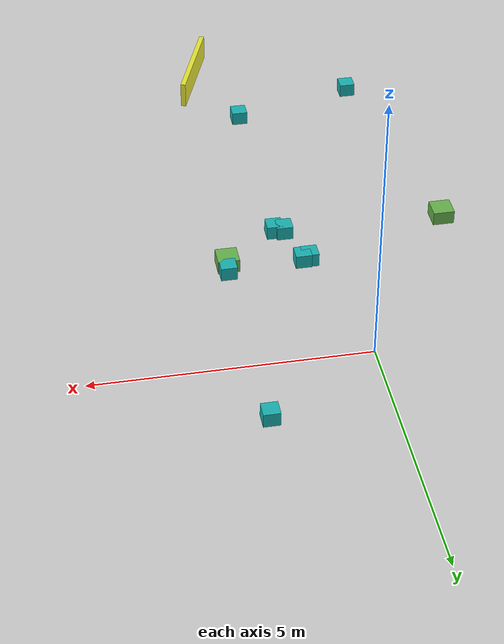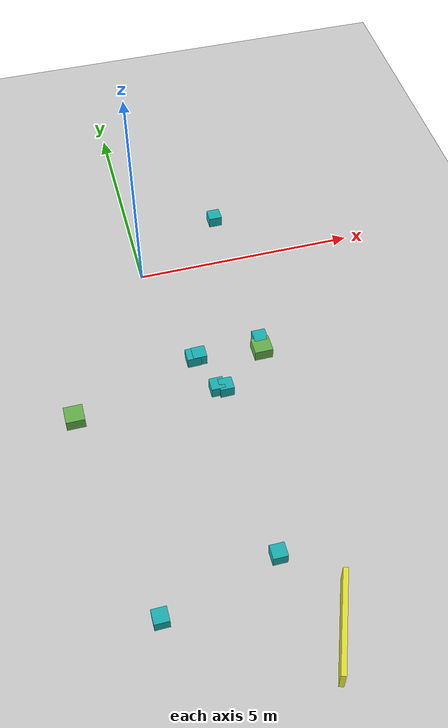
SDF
<sdf version="1.7">
 <world name="default">
  <model name="ground_plane">
   <static>1</static>
   <link name="link">
    <collision name="collision">
     <geometry><plane><normal>0 0 1</normal><size>100 100</size></plane></geometry>
     <surface><friction><ode><mu>100</mu><mu2>50</mu2></ode></friction></surface>
    </collision>
    <visual name="visual">
     <cast_shadows>0</cast_shadows>
     <geometry><plane><normal>0 0 1</normal><size>100 100</size></plane></geometry>
     <material>
      <script><uri>file://media/materials/scripts/gazebo.material</uri><name>Gazebo/Grey</name></script>
     </material>
    </visual>
   </link>
  </model>
  <model name="unit_box_0.3_heavy_clone">
   <link name="link">
    <inertial>
     <mass>100</mass>
     <inertia><ixx>1.5</ixx><ixy>0</ixy><ixz>0</ixz><iyy>1.5</iyy><iyz>0</iyz><izz>1.5</izz></inertia>
    </inertial>
    <visual name="visual">
     <geometry><box><size>0.3 0.3 0.5</size></box></geometry>
     <material>
      <script><name>Gazebo/Grey</name><uri>file://media/materials/scripts/gazebo.material</uri></script>
      <shader type="pixel"><normal_map>__default__</normal_map></shader>
      <ambient>0.1 0.7 0.7 1</ambient>
      <diffuse>0.7 0.7 0.7 1</diffuse>
      <specular>0.01 0.01 0.01 1</specular>
      <emissive>0 0 0 1</emissive>
     </material>
    </visual>
    <collision name="collision">
     <geometry><box><size>0.3 0.3 0.5</size></box></geometry>
     <surface>
      <friction>
       <ode><mu>1</mu><mu2>1</mu2><fdir1>0 0 0</fdir1><slip1>0</slip1><slip2>0</slip2></ode>
       <torsional>
        <coefficient>1</coefficient>
        <patch_radius>0</patch_radius>
        <surface_radius>0</surface_radius>
        <use_patch_radius>1</use_patch_radius>
        <ode><slip>0</slip></ode>
       </torsional>
      </friction>
      <bounce><restitution_coefficient>0</restitution_coefficient><threshold>1e+06</threshold></bounce>
      <contact>
       <collide_without_contact>0</collide_without_contact>
       <collide_without_contact_bitmask>1</collide_without_contact_bitmask>
       <collide_bitmask>1</collide_bitmask>
       <ode>
        <soft_cfm>0</soft_cfm>
        <soft_erp>0.2</soft_erp>
        <kp>1e+13</kp>
        <kd>1</kd>
        <max_vel>0.01</max_vel>
        <min_depth>0</min_depth>
       </ode>
       <bullet>
        <split_impulse>1</split_impulse>
        <split_impulse_penetration_threshold>-0.01</split_impulse_penetration_threshold>
        <soft_cfm>0</soft_cfm>
        <soft_erp>0.2</soft_erp>
        <kp>1e+13</kp>
        <kd>1</kd>
       </bullet>
      </contact>
     </surface>
    </collision>
   </link>
   <static>1</static>
   <pose>2.08884 1.36124 0 0 -0 0</pose>
  </model>
  <model name="unit_box_0.3_heavy_clone_0">
   <link name="link">
    <inertial>
     <mass>100</mass>
     <inertia><ixx>1.5</ixx><ixy>0</ixy><ixz>0</ixz><iyy>1.5</iyy><iyz>0</iyz><izz>1.5</izz></inertia>
    </inertial>
    <visual name="visual">
     <geometry><box><size>0.3 0.3 0.5</size></box></geometry>
     <material>
      <script><name>Gazebo/Grey</name><uri>file://media/materials/scripts/gazebo.material</uri></script>
      <shader type="pixel"><normal_map>__default__</normal_map></shader>
      <ambient>0.1 0.7 0.7 1</ambient>
      <diffuse>0.7 0.7 0.7 1</diffuse>
      <specular>0.01 0.01 0.01 1</specular>
      <emissive>0 0 0 1</emissive>
     </material>
    </visual>
    <collision name="collision">
     <geometry><box><size>0.3 0.3 0.5</size></box></geometry>
     <surface>
      <friction>
       <ode><mu>1</mu><mu2>1</mu2><fdir1>0 0 0</fdir1><slip1>0</slip1><slip2>0</slip2></ode>
       <torsional>
        <coefficient>1</coefficient>
        <patch_radius>0</patch_radius>
        <surface_radius>0</surface_radius>
        <use_patch_radius>1</use_patch_radius>
        <ode><slip>0</slip></ode>
       </torsional>
      </friction>
      <bounce><restitution_coefficient>0</restitution_coefficient><threshold>1e+06</threshold></bounce>
      <contact>
       <collide_without_contact>0</collide_without_contact>
       <collide_without_contact_bitmask>1</collide_without_contact_bitmask>
       <collide_bitmask>1</collide_bitmask>
       <ode>
        <soft_cfm>0</soft_cfm>
        <soft_erp>0.2</soft_erp>
        <kp>1e+13</kp>
        <kd>1</kd>
        <max_vel>0.01</max_vel>
        <min_depth>0</min_depth>
       </ode>
       <bullet>
        <split_impulse>1</split_impulse>
        <split_impulse_penetration_threshold>-0.01</split_impulse_penetration_threshold>
        <soft_cfm>0</soft_cfm>
        <soft_erp>0.2</soft_erp>
        <kp>1e+13</kp>
        <kd>1</kd>
       </bullet>
      </contact>
     </surface>
    </collision>
   </link>
   <static>1</static>
   <pose>2.12804 -2.58503 0 0 -0 0</pose>
  </model>
  <model name="unit_box_0.3_heavy_clone_5">
   <link name="link">
    <inertial>
     <mass>100</mass>
     <inertia><ixx>1.5</ixx><ixy>0</ixy><ixz>0</ixz><iyy>1.5</iyy><iyz>0</iyz><izz>1.5</izz></inertia>
    </inertial>
    <visual name="visual">
     <geometry><box><size>0.3 0.3 0.5</size></box></geometry>
     <material>
      <script><name>Gazebo/Grey</name><uri>file://media/materials/scripts/gazebo.material</uri></script>
      <shader type="pixel"><normal_map>__default__</normal_map></shader>
      <ambient>0.1 0.7 0.7 1</ambient>
      <diffuse>0.7 0.7 0.7 1</diffuse>
      <specular>0.01 0.01 0.01 1</specular>
      <emissive>0 0 0 1</emissive>
     </material>
    </visual>
    <collision name="collision">
     <geometry><box><size>0.3 0.3 0.5</size></box></geometry>
     <surface>
      <friction>
       <ode><mu>1</mu><mu2>1</mu2><fdir1>0 0 0</fdir1><slip1>0</slip1><slip2>0</slip2></ode>
       <torsional>
        <coefficient>1</coefficient>
        <patch_radius>0</patch_radius>
        <surface_radius>0</surface_radius>
        <use_patch_radius>1</use_patch_radius>
        <ode><slip>0</slip></ode>
       </torsional>
      </friction>
      <bounce><restitution_coefficient>0</restitution_coefficient><threshold>1e+06</threshold></bounce>
      <contact>
       <collide_without_contact>0</collide_without_contact>
       <collide_without_contact_bitmask>1</collide_without_contact_bitmask>
       <collide_bitmask>1</collide_bitmask>
       <ode>
        <soft_cfm>0</soft_cfm>
        <soft_erp>0.2</soft_erp>
        <kp>1e+13</kp>
        <kd>1</kd>
        <max_vel>0.01</max_vel>
        <min_depth>0</min_depth>
       </ode>
       <bullet>
        <split_impulse>1</split_impulse>
        <split_impulse_penetration_threshold>-0.01</split_impulse_penetration_threshold>
        <soft_cfm>0</soft_cfm>
        <soft_erp>0.2</soft_erp>
        <kp>1e+13</kp>
        <kd>1</kd>
       </bullet>
      </contact>
     </surface>
    </collision>
   </link>
   <static>1</static>
   <pose>1.07636 -3.67231 0 0 -0 0</pose>
  </model>
  <model name="unit_box_0.3_heavy_clone_6">
   <link name="link">
    <inertial>
     <mass>100</mass>
     <inertia><ixx>1.5</ixx><ixy>0</ixy><ixz>0</ixz><iyy>1.5</iyy><iyz>0</iyz><izz>1.5</izz></inertia>
    </inertial>
    <visual name="visual">
     <geometry><box><size>0.3 0.3 0.5</size></box></geometry>
     <material>
      <script><name>Gazebo/Grey</name><uri>file://media/materials/scripts/gazebo.material</uri></script>
      <shader type="pixel"><normal_map>__default__</normal_map></shader>
      <ambient>0.1 0.7 0.7 1</ambient>
      <diffuse>0.7 0.7 0.7 1</diffuse>
      <specular>0.01 0.01 0.01 1</specular>
      <emissive>0 0 0 1</emissive>
     </material>
    </visual>
    <collision name="collision">
     <geometry><box><size>0.3 0.3 0.5</size></box></geometry>
     <surface>
      <friction>
       <ode><mu>1</mu><mu2>1</mu2><fdir1>0 0 0</fdir1><slip1>0</slip1><slip2>0</slip2></ode>
       <torsional>
        <coefficient>1</coefficient>
        <patch_radius>0</patch_radius>
        <surface_radius>0</surface_radius>
        <use_patch_radius>1</use_patch_radius>
        <ode><slip>0</slip></ode>
       </torsional>
      </friction>
      <bounce><restitution_coefficient>0</restitution_coefficient><threshold>1e+06</threshold></bounce>
      <contact>
       <collide_without_contact>0</collide_without_contact>
       <collide_without_contact_bitmask>1</collide_without_contact_bitmask>
       <collide_bitmask>1</collide_bitmask>
       <ode>
        <soft_cfm>0</soft_cfm>
        <soft_erp>0.2</soft_erp>
        <kp>1e+13</kp>
        <kd>1</kd>
        <max_vel>0.01</max_vel>
        <min_depth>0</min_depth>
       </ode>
       <bullet>
        <split_impulse>1</split_impulse>
        <split_impulse_penetration_threshold>-0.01</split_impulse_penetration_threshold>
        <soft_cfm>0</soft_cfm>
        <soft_erp>0.2</soft_erp>
        <kp>1e+13</kp>
        <kd>1</kd>
       </bullet>
      </contact>
     </surface>
    </collision>
   </link>
   <static>1</static>
   <pose>0.896545 -3.61717 0 0 -0 0</pose>
  </model>
  <model name="unit_box_0.3_heavy_clone_7">
   <link name="link">
    <inertial>
     <mass>100</mass>
     <inertia><ixx>1.5</ixx><ixy>0</ixy><ixz>0</ixz><iyy>1.5</iyy><iyz>0</iyz><izz>1.5</izz></inertia>
    </inertial>
    <visual name="visual">
     <geometry><box><size>0.3 0.3 0.5</size></box></geometry>
     <material>
      <script><name>Gazebo/Grey</name><uri>file://media/materials/scripts/gazebo.material</uri></script>
      <shader type="pixel"><normal_map>__default__</normal_map></shader>
      <ambient>0.1 0.7 0.7 1</ambient>
      <diffuse>0.7 0.7 0.7 1</diffuse>
      <specular>0.01 0.01 0.01 1</specular>
      <emissive>0 0 0 1</emissive>
     </material>
    </visual>
    <collision name="collision">
     <geometry><box><size>0.3 0.3 0.5</size></box></geometry>
     <surface>
      <friction>
       <ode><mu>1</mu><mu2>1</mu2><fdir1>0 0 0</fdir1><slip1>0</slip1><slip2>0</slip2></ode>
       <torsional>
        <coefficient>1</coefficient>
        <patch_radius>0</patch_radius>
        <surface_radius>0</surface_radius>
        <use_patch_radius>1</use_patch_radius>
        <ode><slip>0</slip></ode>
       </torsional>
      </friction>
      <bounce><restitution_coefficient>0</restitution_coefficient><threshold>1e+06</threshold></bounce>
      <contact>
       <collide_without_contact>0</collide_without_contact>
       <collide_without_contact_bitmask>1</collide_without_contact_bitmask>
       <collide_bitmask>1</collide_bitmask>
       <ode>
        <soft_cfm>0</soft_cfm>
        <soft_erp>0.2</soft_erp>
        <kp>1e+13</kp>
        <kd>1</kd>
        <max_vel>0.01</max_vel>
        <min_depth>0</min_depth>
       </ode>
       <bullet>
        <split_impulse>1</split_impulse>
        <split_impulse_penetration_threshold>-0.01</split_impulse_penetration_threshold>
        <soft_cfm>0</soft_cfm>
        <soft_erp>0.2</soft_erp>
        <kp>1e+13</kp>
        <kd>1</kd>
       </bullet>
      </contact>
     </surface>
    </collision>
   </link>
   <static>1</static>
   <pose>0.588928 -2.71749 0 0 -0 0</pose>
  </model>
  <model name="unit_box_0.3_heavy_clone_8">
   <link name="link">
    <inertial>
     <mass>100</mass>
     <inertia><ixx>1.5</ixx><ixy>0</ixy><ixz>0</ixz><iyy>1.5</iyy><iyz>0</iyz><izz>1.5</izz></inertia>
    </inertial>
    <visual name="visual">
     <geometry><box><size>0.3 0.3 0.5</size></box></geometry>
     <material>
      <script><name>Gazebo/Grey</name><uri>file://media/materials/scripts/gazebo.material</uri></script>
      <shader type="pixel"><normal_map>__default__</normal_map></shader>
      <ambient>0.1 0.7 0.7 1</ambient>
      <diffuse>0.7 0.7 0.7 1</diffuse>
      <specular>0.01 0.01 0.01 1</specular>
      <emissive>0 0 0 1</emissive>
     </material>
    </visual>
    <collision name="collision">
     <geometry><box><size>0.3 0.3 0.5</size></box></geometry>
     <surface>
      <friction>
       <ode><mu>1</mu><mu2>1</mu2><fdir1>0 0 0</fdir1><slip1>0</slip1><slip2>0</slip2></ode>
       <torsional>
        <coefficient>1</coefficient>
        <patch_radius>0</patch_radius>
        <surface_radius>0</surface_radius>
        <use_patch_radius>1</use_patch_radius>
        <ode><slip>0</slip></ode>
       </torsional>
      </friction>
      <bounce><restitution_coefficient>0</restitution_coefficient><threshold>1e+06</threshold></bounce>
      <contact>
       <collide_without_contact>0</collide_without_contact>
       <collide_without_contact_bitmask>1</collide_without_contact_bitmask>
       <collide_bitmask>1</collide_bitmask>
       <ode>
        <soft_cfm>0</soft_cfm>
        <soft_erp>0.2</soft_erp>
        <kp>1e+13</kp>
        <kd>1</kd>
        <max_vel>0.01</max_vel>
        <min_depth>0</min_depth>
       </ode>
       <bullet>
        <split_impulse>1</split_impulse>
        <split_impulse_penetration_threshold>-0.01</split_impulse_penetration_threshold>
        <soft_cfm>0</soft_cfm>
        <soft_erp>0.2</soft_erp>
        <kp>1e+13</kp>
        <kd>1</kd>
       </bullet>
      </contact>
     </surface>
    </collision>
   </link>
   <static>1</static>
   <pose>0.721323 -2.7051 0 0 -0 0</pose>
  </model>
  <model name="unit_box_0.3_heavy_clone_9">
   <link name="link">
    <inertial>
     <mass>100</mass>
     <inertia><ixx>1.5</ixx><ixy>0</ixy><ixz>0</ixz><iyy>1.5</iyy><iyz>0</iyz><izz>1.5</izz></inertia>
    </inertial>
    <visual name="visual">
     <geometry><box><size>0.3 0.3 0.5</size></box></geometry>
     <material>
      <script><name>Gazebo/Grey</name><uri>file://media/materials/scripts/gazebo.material</uri></script>
      <shader type="pixel"><normal_map>__default__</normal_map></shader>
      <ambient>0.1 0.7 0.7 1</ambient>
      <diffuse>0.7 0.7 0.7 1</diffuse>
      <specular>0.01 0.01 0.01 1</specular>
      <emissive>0 0 0 1</emissive>
     </material>
    </visual>
    <collision name="collision">
     <geometry><box><size>0.3 0.3 0.5</size></box></geometry>
     <surface>
      <friction>
       <ode><mu>1</mu><mu2>1</mu2><fdir1>0 0 0</fdir1><slip1>0</slip1><slip2>0</slip2></ode>
       <torsional>
        <coefficient>1</coefficient>
        <patch_radius>0</patch_radius>
        <surface_radius>0</surface_radius>
        <use_patch_radius>1</use_patch_radius>
        <ode><slip>0</slip></ode>
       </torsional>
      </friction>
      <bounce><restitution_coefficient>0</restitution_coefficient><threshold>1e+06</threshold></bounce>
      <contact>
       <collide_without_contact>0</collide_without_contact>
       <collide_without_contact_bitmask>1</collide_without_contact_bitmask>
       <collide_bitmask>1</collide_bitmask>
       <ode>
        <soft_cfm>0</soft_cfm>
        <soft_erp>0.2</soft_erp>
        <kp>1e+13</kp>
        <kd>1</kd>
        <max_vel>0.01</max_vel>
        <min_depth>0</min_depth>
       </ode>
       <bullet>
        <split_impulse>1</split_impulse>
        <split_impulse_penetration_threshold>-0.01</split_impulse_penetration_threshold>
        <soft_cfm>0</soft_cfm>
        <soft_erp>0.2</soft_erp>
        <kp>1e+13</kp>
        <kd>1</kd>
       </bullet>
      </contact>
     </surface>
    </collision>
   </link>
   <static>1</static>
   <pose>1.05115 -7.66638 0 0 -0 0</pose>
  </model>
  <model name="wooden_wall_2_heavy">
   <link name="link_1">
    <inertial>
     <mass>100</mass>
     <inertia><ixx>8.41667</ixx><ixy>0</ixy><ixz>0</ixz><iyy>41.6667</iyy><iyz>0</iyz><izz>33.4167</izz></inertia>
    </inertial>
    <visual name="visual">
     <geometry><box><size>2 0.1 1</size></box></geometry>
     <material>
      <lighting>1</lighting>
      <script><uri>file://media/materials/scripts/gazebo.material</uri><name>Gazebo/Grey</name></script>
      <shader type="pixel"><normal_map>__default__</normal_map></shader>
      <ambient>0.9 0.9 0.2 1</ambient>
      <diffuse>0.7 0.7 0.7 1</diffuse>
      <specular>0.01 0.01 0.01 1</specular>
      <emissive>0 0 0 1</emissive>
     </material>
    </visual>
    <collision name="collision">
     <geometry><box><size>2 0.1 1</size></box></geometry>
     <surface>
      <friction>
       <ode><mu>1</mu><mu2>1</mu2><fdir1>0 0 0</fdir1><slip1>0</slip1><slip2>0</slip2></ode>
       <torsional>
        <coefficient>1</coefficient>
        <patch_radius>0</patch_radius>
        <surface_radius>0</surface_radius>
        <use_patch_radius>1</use_patch_radius>
        <ode><slip>0</slip></ode>
       </torsional>
      </friction>
      <bounce><restitution_coefficient>0</restitution_coefficient><threshold>1e+06</threshold></bounce>
      <contact>
       <collide_without_contact>0</collide_without_contact>
       <collide_without_contact_bitmask>1</collide_without_contact_bitmask>
       <collide_bitmask>1</collide_bitmask>
       <ode>
        <soft_cfm>0</soft_cfm>
        <soft_erp>0.2</soft_erp>
        <kp>1e+13</kp>
        <kd>1</kd>
        <max_vel>0.01</max_vel>
        <min_depth>0</min_depth>
       </ode>
       <bullet>
        <split_impulse>1</split_impulse>
        <split_impulse_penetration_threshold>-0.01</split_impulse_penetration_threshold>
        <soft_cfm>0</soft_cfm>
        <soft_erp>0.2</soft_erp>
        <kp>1e+13</kp>
        <kd>1</kd>
       </bullet>
      </contact>
     </surface>
    </collision>
   </link>
   <static>1</static>
   <allow_auto_disable>0</allow_auto_disable>
   <pose>1.74439 -9.35521 0 0 -0 1.22167</pose>
  </model>
  <model name="unit_box_0.4_heavy_clone">
   <link name="link">
    <inertial>
     <mass>100</mass>
     <inertia><ixx>1.5</ixx><ixy>0</ixy><ixz>0</ixz><iyy>1.5</iyy><iyz>0</iyz><izz>1.5</izz></inertia>
    </inertial>
    <visual name="visual">
     <geometry><box><size>0.4 0.4 0.5</size></box></geometry>
     <material>
      <script><name>Gazebo/Grey</name><uri>file://media/materials/scripts/gazebo.material</uri></script>
      <shader type="pixel"><normal_map>__default__</normal_map></shader>
      <ambient>0.4 0.7 0.3 1</ambient>
      <diffuse>0.7 0.7 0.7 1</diffuse>
      <specular>0.01 0.01 0.01 1</specular>
      <emissive>0 0 0 1</emissive>
     </material>
    </visual>
    <collision name="collision">
     <geometry><box><size>0.4 0.4 0.5</size></box></geometry>
     <surface>
      <friction>
       <ode><mu>1</mu><mu2>1</mu2><fdir1>0 0 0</fdir1><slip1>0</slip1><slip2>0</slip2></ode>
       <torsional>
        <coefficient>1</coefficient>
        <patch_radius>0</patch_radius>
        <surface_radius>0</surface_radius>
        <use_patch_radius>1</use_patch_radius>
        <ode><slip>0</slip></ode>
       </torsional>
      </friction>
      <bounce><restitution_coefficient>0</restitution_coefficient><threshold>1e+06</threshold></bounce>
      <contact>
       <collide_without_contact>0</collide_without_contact>
       <collide_without_contact_bitmask>1</collide_without_contact_bitmask>
       <collide_bitmask>1</collide_bitmask>
       <ode>
        <soft_cfm>0</soft_cfm>
        <soft_erp>0.2</soft_erp>
        <kp>1e+13</kp>
        <kd>1</kd>
        <max_vel>0.01</max_vel>
        <min_depth>0</min_depth>
       </ode>
       <bullet>
        <split_impulse>1</split_impulse>
        <split_impulse_penetration_threshold>-0.01</split_impulse_penetration_threshold>
        <soft_cfm>0</soft_cfm>
        <soft_erp>0.2</soft_erp>
        <kp>1e+13</kp>
        <kd>1</kd>
       </bullet>
      </contact>
     </surface>
    </collision>
   </link>
   <static>1</static>
   <pose>2.09793 -2.85005 0 0 -0 0</pose>
  </model>
  <model name="unit_box_0.4_heavy_clone_4">
   <link name="link">
    <inertial>
     <mass>100</mass>
     <inertia><ixx>1.5</ixx><ixy>0</ixy><ixz>0</ixz><iyy>1.5</iyy><iyz>0</iyz><izz>1.5</izz></inertia>
    </inertial>
    <visual name="visual">
     <geometry><box><size>0.4 0.4 0.5</size></box></geometry>
     <material>
      <script><name>Gazebo/Grey</name><uri>file://media/materials/scripts/gazebo.material</uri></script>
      <shader type="pixel"><normal_map>__default__</normal_map></shader>
      <ambient>0.4 0.7 0.3 1</ambient>
      <diffuse>0.7 0.7 0.7 1</diffuse>
      <specular>0.01 0.01 0.01 1</specular>
      <emissive>0 0 0 1</emissive>
     </material>
    </visual>
    <collision name="collision">
     <geometry><box><size>0.4 0.4 0.5</size></box></geometry>
     <surface>
      <friction>
       <ode><mu>1</mu><mu2>1</mu2><fdir1>0 0 0</fdir1><slip1>0</slip1><slip2>0</slip2></ode>
       <torsional>
        <coefficient>1</coefficient>
        <patch_radius>0</patch_radius>
        <surface_radius>0</surface_radius>
        <use_patch_radius>1</use_patch_radius>
        <ode><slip>0</slip></ode>
       </torsional>
      </friction>
      <bounce><restitution_coefficient>0</restitution_coefficient><threshold>1e+06</threshold></bounce>
      <contact>
       <collide_without_contact>0</collide_without_contact>
       <collide_without_contact_bitmask>1</collide_without_contact_bitmask>
       <collide_bitmask>1</collide_bitmask>
       <ode>
        <soft_cfm>0</soft_cfm>
        <soft_erp>0.2</soft_erp>
        <kp>1e+13</kp>
        <kd>1</kd>
        <max_vel>0.01</max_vel>
        <min_depth>0</min_depth>
       </ode>
       <bullet>
        <split_impulse>1</split_impulse>
        <split_impulse_penetration_threshold>-0.01</split_impulse_penetration_threshold>
        <soft_cfm>0</soft_cfm>
        <soft_erp>0.2</soft_erp>
        <kp>1e+13</kp>
        <kd>1</kd>
       </bullet>
      </contact>
     </surface>
    </collision>
   </link>
   <static>1</static>
   <pose>-2.14782 -3.61747 0 0 -0 0</pose>
  </model>
  <model name="unit_box_0.3_heavy_clone_clone_3_clone_clone_0">
   <link name="link">
    <inertial>
     <mass>100</mass>
     <inertia><ixx>1.5</ixx><ixy>0</ixy><ixz>0</ixz><iyy>1.5</iyy><iyz>0</iyz><izz>1.5</izz></inertia>
    </inertial>
    <visual name="visual">
     <geometry><box><size>0.3 0.3 0.5</size></box></geometry>
     <material>
      <script><name>Gazebo/Grey</name><uri>file://media/materials/scripts/gazebo.material</uri></script>
      <shader type="pixel"><normal_map>__default__</normal_map></shader>
      <ambient>0.1 0.7 0.7 1</ambient>
      <diffuse>0.7 0.7 0.7 1</diffuse>
      <specular>0.01 0.01 0.01 1</specular>
      <emissive>0 0 0 1</emissive>
     </material>
    </visual>
    <collision name="collision">
     <geometry><box><size>0.3 0.3 0.5</size></box></geometry>
     <surface>
      <friction>
       <ode><mu>1</mu><mu2>1</mu2><fdir1>0 0 0</fdir1><slip1>0</slip1><slip2>0</slip2></ode>
       <torsional>
        <coefficient>1</coefficient>
        <patch_radius>0</patch_radius>
        <surface_radius>0</surface_radius>
        <use_patch_radius>1</use_patch_radius>
        <ode><slip>0</slip></ode>
       </torsional>
      </friction>
      <bounce><restitution_coefficient>0</restitution_coefficient><threshold>1e+06</threshold></bounce>
      <contact>
       <collide_without_contact>0</collide_without_contact>
       <collide_without_contact_bitmask>1</collide_without_contact_bitmask>
       <collide_bitmask>1</collide_bitmask>
       <ode>
        <soft_cfm>0</soft_cfm>
        <soft_erp>0.2</soft_erp>
        <kp>1e+13</kp>
        <kd>1</kd>
        <max_vel>0.01</max_vel>
        <min_depth>0</min_depth>
       </ode>
       <bullet>
        <split_impulse>1</split_impulse>
        <split_impulse_penetration_threshold>-0.01</split_impulse_penetration_threshold>
        <soft_cfm>0</soft_cfm>
        <soft_erp>0.2</soft_erp>
        <kp>1e+13</kp>
        <kd>1</kd>
       </bullet>
      </contact>
     </surface>
    </collision>
   </link>
   <static>1</static>
   <pose>-1.3534 -8.33798 0 0 -0 0</pose>
  </model>
 </world>
</sdf>
